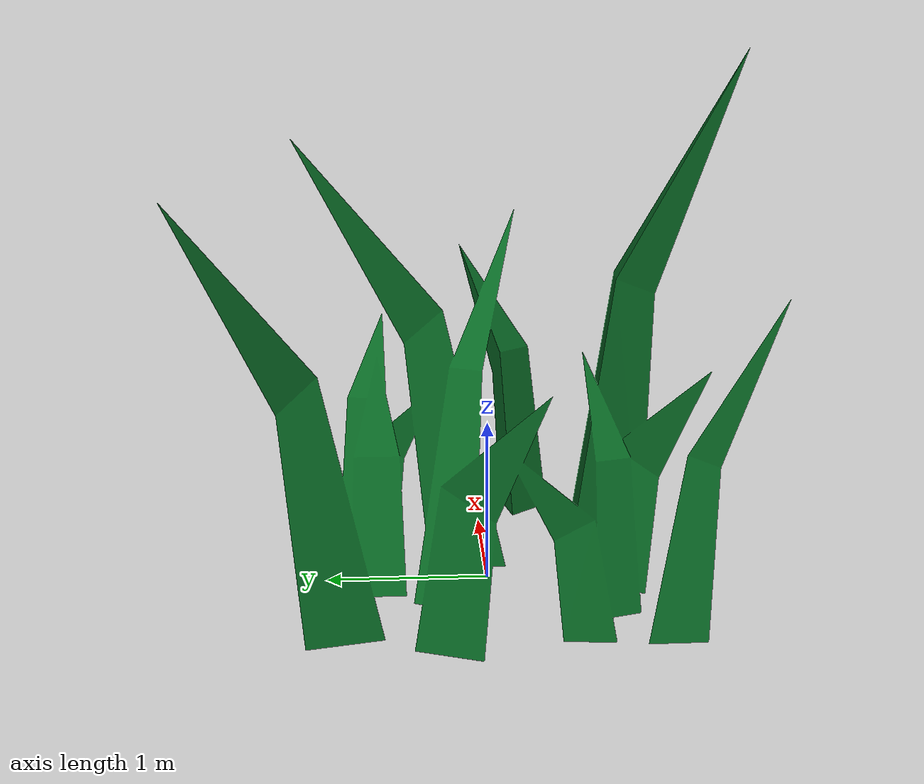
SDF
<?xml version="1.0"?>
<sdf version="1.5">
  <model name="aquabot_grass">
    <static>true</static>
    <link name="link">
      <visual name="visual">
        <pose>0.0 0.0 0.0 0 0 0 </pose>
        <geometry>
          <mesh>
            <scale>5 5 5</scale>
            <uri>mesh/grass.dae</uri>
          </mesh>
        </geometry>
      </visual>
    </link>
  </model>
</sdf>
